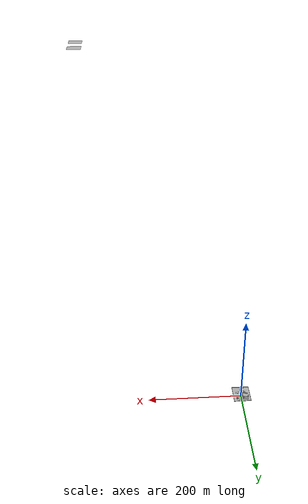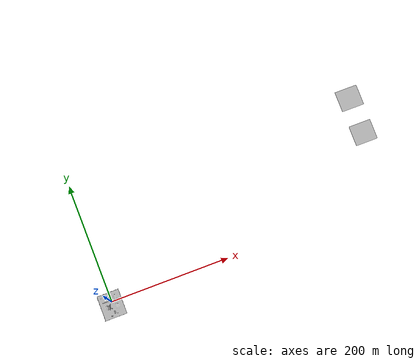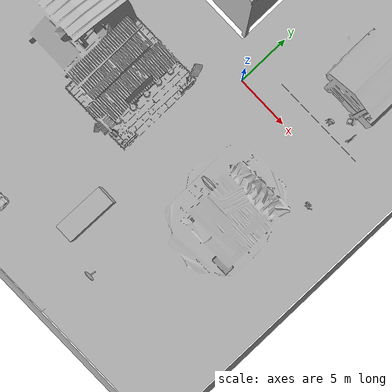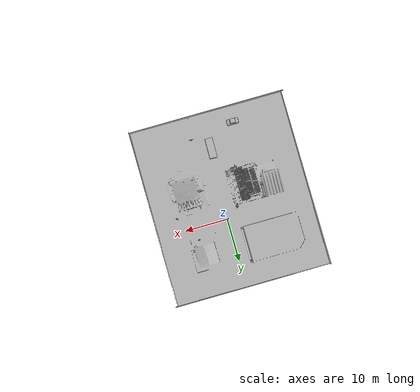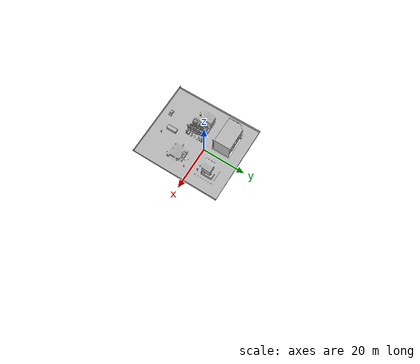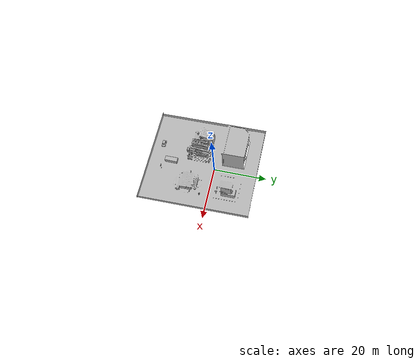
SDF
<sdf version="1.4">
 <world name="default">
  <physics type="ode">
   <gravity>0 0 -9.81</gravity>
   <ode>
    <solver><type>world</type><iters>500</iters><sor>1.0</sor></solver>
    <constraints>
     <cfm>0.0</cfm>
     <erp>0.2</erp>
     <contact_max_correcting_vel>0.1</contact_max_correcting_vel>
     <contact_surface_layer>0.0</contact_surface_layer>
    </constraints>
   </ode>
   <real_time_update_rate>1000</real_time_update_rate>
   <max_step_size>0.001</max_step_size>
  </physics>
  <include><uri>model://sun</uri></include>
  <model name="ground_plane">
   <static>1</static>
   <link name="link">
    <collision name="collision">
     <geometry><plane><normal>0 0 1</normal><size>100 100</size></plane></geometry>
     <surface><friction><ode><mu>100</mu><mu2>50</mu2></ode></friction></surface>
    </collision>
   </link>
  </model>
  <include><uri>model://town1</uri><pose>0 0 -0.189298 0 0 0</pose></include>
  <include>
   <uri>model://speed_limit_80</uri>
   <name>speed_limit_80_1</name>
   <pose>9.634830 2.800253 -0.154945 0 0 0</pose>
  </include>
  <include>
   <uri>model://speed_limit_80</uri>
   <name>speed_limit_80_2</name>
   <pose>3.093306 -19.901224 -0.154945 0 0 -1.580482</pose>
  </include>
  <include>
   <uri>model://car_passat</uri>
   <name>car_passat1</name>
   <pose>-1.003638 -17.657362 0.320109 0 0 3.125236</pose>
  </include>
  <include>
   <uri>model://old_car</uri>
   <name>old_car1</name>
   <pose>-7.381139 -21.600540 -0.011254 0 0 3.125236</pose>
  </include>
  <include>
   <uri>model://person_ken</uri>
   <name>person_ken1</name>
   <pose>7.524980 2.741197 0.148014 0 0 0</pose>
  </include>
  <include>
   <uri>model://person_ken</uri>
   <name>person_ryan2</name>
   <pose>11.196165 -3.220906 0.046237 0 0 2.421118</pose>
  </include>
  <plugin name="traffic_light_manager_world_plugin" filename="libtraffic_light_manager_world_plugin.so">
   <update_frequency>1.0</update_frequency>
   <model_traffic_lights>traffic_light1</model_traffic_lights>
  </plugin>
  <light name="user_point_light_0" type="point">
   <pose>7.1 0.0 3.0 0 0 0</pose>
   <diffuse>0.2 0.2 0.2 1</diffuse>
   <specular>0.1 0.1 0.1 1</specular>
   <attenuation>
    <range>10</range>
    <constant>0.5</constant>
    <linear>0.01</linear>
    <quadratic>0.001</quadratic>
   </attenuation>
   <cast_shadows>0</cast_shadows>
   <direction>0 0 -1</direction>
  </light>
  <light name="user_point_light_1" type="point">
   <pose>-7.1 0.0 3.0 0 0 0</pose>
   <diffuse>0.2 0.2 0.2 1</diffuse>
   <specular>0.1 0.1 0.1 1</specular>
   <attenuation>
    <range>10</range>
    <constant>0.5</constant>
    <linear>0.01</linear>
    <quadratic>0.001</quadratic>
   </attenuation>
   <cast_shadows>0</cast_shadows>
   <direction>0 0 -1</direction>
  </light>
  <light name="user_point_light_2" type="point">
   <pose>7.1 -16.0 3.0 0 0 0</pose>
   <diffuse>0.2 0.2 0.2 1</diffuse>
   <specular>0.1 0.1 0.1 1</specular>
   <attenuation>
    <range>10</range>
    <constant>0.5</constant>
    <linear>0.01</linear>
    <quadratic>0.001</quadratic>
   </attenuation>
   <cast_shadows>0</cast_shadows>
   <direction>0 0 -1</direction>
  </light>
  <light name="user_point_light_3" type="point">
   <pose>-7.1 -16.0 3.0 0 0 0</pose>
   <diffuse>0.2 0.2 0.2 1</diffuse>
   <specular>0.1 0.1 0.1 1</specular>
   <attenuation>
    <range>10.0</range>
    <constant>0.5</constant>
    <linear>0.01</linear>
    <quadratic>0.001</quadratic>
   </attenuation>
   <cast_shadows>0</cast_shadows>
   <direction>0 0 -1</direction>
  </light>
  <light name="user_point_light_4" type="point">
   <pose>7.1 13.0 3.0 0 0 0</pose>
   <diffuse>0.2 0.2 0.2 1</diffuse>
   <specular>0.1 0.1 0.1 1</specular>
   <attenuation>
    <range>10.0</range>
    <constant>0.5</constant>
    <linear>0.01</linear>
    <quadratic>0.001</quadratic>
   </attenuation>
   <cast_shadows>0</cast_shadows>
   <direction>0 0 -1</direction>
  </light>
  <light name="user_point_light_5" type="point">
   <pose>-7.1 13.0 3.0 0 0 0</pose>
   <diffuse>0.2 0.2 0.2 1</diffuse>
   <specular>0.1 0.1 0.1 1</specular>
   <attenuation>
    <range>10</range>
    <constant>0.5</constant>
    <linear>0.01</linear>
    <quadratic>0.001</quadratic>
   </attenuation>
   <cast_shadows>0</cast_shadows>
   <direction>0 0 -1</direction>
  </light>
 </world>
</sdf>

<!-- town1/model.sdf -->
<sdf version='1.6'>
  <model name='town1'>
    <link name='link_1'>
         <visual name='visual'>
        <pose frame=''>0 0 0 0 -0 0</pose>
        <geometry>
          <mesh>
            <uri>model://town1/meshes/town1_sp.dae</uri>
            <scale>1.0 1.0 1.0</scale>
          </mesh>
        </geometry>
        <cast_shadows>0</cast_shadows>
        <transparency>0</transparency>
      </visual>
      <collision name='collision'>
        <laser_retro>0</laser_retro>
        <max_contacts>10</max_contacts>
        <pose frame=''>0 0 0 0 -0 0</pose>
        <geometry>
          <mesh>
            <uri>model://town1/meshes/town1_nofloor.stl</uri>
            <scale>1.0 1.0 1.0</scale>
          </mesh>
        </geometry>
     </collision>
    </link>

    <static>1</static>
    <allow_auto_disable>1</allow_auto_disable>
  </model>
</sdf>

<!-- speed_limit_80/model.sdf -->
<sdf version='1.6'>
  <model name='speed_limit_80'>
    <link name='link_1'>
         <visual name='visual'>
        <pose frame=''>0 0 0 0 -0 0</pose>
        <geometry>
          <mesh>
            <uri>model://speed_limit_80/meshes/speed_limit_80.dae</uri>
            <scale>2.0 2.0 2.0</scale>
          </mesh>
        </geometry>
        <cast_shadows>0</cast_shadows>
        <transparency>0</transparency>
      </visual>
      <collision name='collision'>
        <laser_retro>0</laser_retro>
        <max_contacts>10</max_contacts>
        <pose frame=''>0 0 0 0 -0 0</pose>
        <geometry>
          <mesh>
            <uri>model://speed_limit_80/meshes/speed_limit_80.dae</uri>
            <scale>2.0 2.0 2.0</scale>
          </mesh>
        </geometry>
     </collision>
    </link>

    <static>1</static>
    <allow_auto_disable>1</allow_auto_disable>
  </model>

</sdf>

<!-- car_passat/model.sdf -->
<sdf version='1.6'>
  <model name='car_passat'>
    <link name='link_1'>
      <visual name='visual'>
        <pose frame=''>0 0 0 0 -0 0</pose>
        <geometry>
          <mesh>
            <uri>model://car_passat/meshes/car_passat.dae</uri>
            <scale>1.0 1.0 1.0</scale>
          </mesh>
        </geometry>
        <cast_shadows>0</cast_shadows>
        <transparency>0</transparency>
      </visual>
      <collision name='collision'>
        <laser_retro>0</laser_retro>
        <max_contacts>10</max_contacts>
        <pose frame=''>0 0 0 0 -0 0</pose>
        <geometry>
          <mesh>
            <uri>model://car_passat/meshes/car_passat.stl</uri>
            <scale>1.0 1.0 1.0</scale>
          </mesh>
        </geometry>
     </collision>
    </link>

    <static>1</static>
    <allow_auto_disable>1</allow_auto_disable>
  </model>
</sdf>

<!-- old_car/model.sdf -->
<sdf version='1.6'>
  <model name='old_car'>
    <link name='link_1'>
      <visual name='visual'>
        <pose frame=''>0 0 0 0 -0 0</pose>
        <geometry>
          <mesh>
            <uri>model://old_car/meshes/old_car.dae</uri>
            <scale>1.0 1.0 1.0</scale>
          </mesh>
        </geometry>
        <cast_shadows>0</cast_shadows>
        <transparency>0</transparency>
      </visual>
      <collision name='collision'>
        <laser_retro>0</laser_retro>
        <max_contacts>10</max_contacts>
        <pose frame=''>0 0 0 0 -0 0</pose>
        <geometry>
          <mesh>
            <uri>model://old_car/meshes/old_car.stl</uri>
            <scale>1.0 1.0 1.0</scale>
          </mesh>
        </geometry>
     </collision>
    </link>

    <static>1</static>
    <allow_auto_disable>1</allow_auto_disable>
  </model>
</sdf>

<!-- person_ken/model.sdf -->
<sdf version='1.6'>
  <model name='person_ken'>
    <link name='link_1'>

    <inertial>
        <mass>1.0</mass>
        <inertia> <!-- inertias are tricky to compute -->
          <!-- http://gazebosim.org/tutorials?tut=inertia&cat=build_robot -->
          <ixx>0.001666666666666667</ixx>       <!-- for a box: ixx = 0.083 * mass * (y*y + z*z) -->
          <ixy>0.0</ixy>         <!-- for a box: ixy = 0 -->
          <ixz>0.0</ixz>         <!-- for a box: ixz = 0 -->
          <iyy>0.001666666666666667</iyy>       <!-- for a box: iyy = 0.083 * mass * (x*x + z*z) -->
          <iyz>0.0</iyz>         <!-- for a box: iyz = 0 -->
          <izz>0.001666666666666667</izz>       <!-- for a box: izz = 0.083 * mass * (x*x + y*y) -->
        </inertia>
      </inertial>
         <visual name='visual'>
        <pose frame=''>0 0 0 0 -0 0</pose>
        <geometry>
          <mesh>
            <uri>model://person_ken/meshes/person_ken.dae</uri>
            <scale>1.0 1.0 1.0</scale>
          </mesh>
        </geometry>
        <cast_shadows>0</cast_shadows>
        <transparency>0</transparency>
      </visual>
      <collision name='collision'>
        <laser_retro>0</laser_retro>
        <max_contacts>10</max_contacts>
        <pose frame=''>0 0 0 0 -0 0</pose>
        <geometry>
          <mesh>
            <uri>model://person_ken/meshes/person_ken.stl</uri>
            <scale>1.0 1.0 1.0</scale>
          </mesh>
        </geometry>
     </collision>
    </link>

    <static>1</static>
    <allow_auto_disable>1</allow_auto_disable>
  </model>
</sdf>
